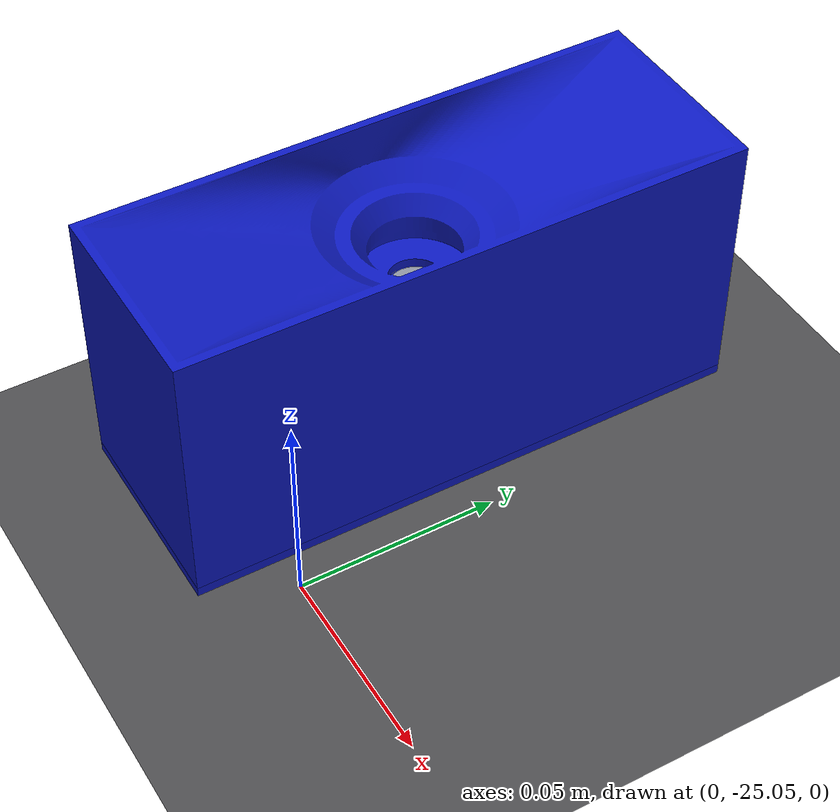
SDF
<sdf version="1.9">
 <world name="default">
  <model name="ground_plane">
   <static>true</static>
   <link name="link">
    <collision name="collision">
     <geometry><plane><normal>0 0 1</normal><size>1 1</size></plane></geometry>
    </collision>
    <visual name="visual">
     <cast_shadows>false</cast_shadows>
     <geometry><plane><normal>0 0 1</normal><size>500 500</size></plane></geometry>
     <material>
      <ambient>0.30 0.30 0.31 1</ambient>
      <diffuse>0.30 0.30 0.31 1</diffuse>
      <specular>0 0 0 0</specular>
      <pbr>
       <metal>
        <albedo_map>materials/textures/asphalt_grey.png</albedo_map>
        <metalness>0.0</metalness>
        <roughness>1.0</roughness>
       </metal>
      </pbr>
     </material>
    </visual>
    <inertial>
     <mass>1</mass>
     <inertia><ixx>1</ixx><ixy>0</ixy><ixz>0</ixz><iyy>1</iyy><iyz>0</iyz><izz>1</izz></inertia>
    </inertial>
   </link>
  </model>
  <model name="payload_blue">
   <pose>-0.035000 -25.000000 0.035 0 0 1.5707963268</pose>
   <link name="link">
    <inertial>
     <mass>0.15</mass>
     <inertia><ixx>9.25e-5</ixx><iyy>3.06e-4</iyy><izz>2.76e-4</izz><ixy>0</ixy><ixz>0</ixz><iyz>0</iyz></inertia>
    </inertial>
    <collision name="bore_base">
     <pose>0.000000 0.000000 -0.009000 0.000000000 0.000000000 0.000000000</pose>
     <geometry><box><size>0.140000 0.050000 0.052000</size></box></geometry>
    </collision>
    <collision name="bore_fill_wall_00">
     <pose>-0.047100 0.012500 0.029750 0.000000000 0.000000000 0.000000000</pose>
     <geometry><box><size>0.045800 0.025000 0.010500</size></box></geometry>
    </collision>
    <collision name="bore_fill_wall_01">
     <pose>-0.047100 -0.012500 0.029750 0.000000000 0.000000000 0.000000000</pose>
     <geometry><box><size>0.045800 0.025000 0.010500</size></box></geometry>
    </collision>
    <collision name="bore_fill_wall_02">
     <pose>-0.021175 0.020503 0.029750 0.000000000 0.000000000 0.000000000</pose>
     <geometry><box><size>0.006050 0.008993 0.010500</size></box></geometry>
    </collision>
    <collision name="bore_fill_wall_03">
     <pose>-0.021175 -0.020503 0.029750 0.000000000 0.000000000 0.000000000</pose>
     <geometry><box><size>0.006050 0.008993 0.010500</size></box></geometry>
    </collision>
    <collision name="bore_fill_wall_04">
     <pose>-0.015125 0.022979 0.029750 0.000000000 0.000000000 0.000000000</pose>
     <geometry><box><size>0.006050 0.004042 0.010500</size></box></geometry>
    </collision>
    <collision name="bore_fill_wall_05">
     <pose>-0.015125 -0.022979 0.029750 0.000000000 0.000000000 0.000000000</pose>
     <geometry><box><size>0.006050 0.004042 0.010500</size></box></geometry>
    </collision>
    <collision name="bore_fill_wall_06">
     <pose>-0.009075 0.024216 0.029750 0.000000000 0.000000000 0.000000000</pose>
     <geometry><box><size>0.006050 0.001568 0.010500</size></box></geometry>
    </collision>
    <collision name="bore_fill_wall_07">
     <pose>-0.009075 -0.024216 0.029750 0.000000000 0.000000000 0.000000000</pose>
     <geometry><box><size>0.006050 0.001568 0.010500</size></box></geometry>
    </collision>
    <collision name="bore_fill_wall_08">
     <pose>-0.003025 0.024600 0.029750 0.000000000 0.000000000 0.000000000</pose>
     <geometry><box><size>0.006050 0.000800 0.010500</size></box></geometry>
    </collision>
    <collision name="bore_fill_wall_09">
     <pose>-0.003025 -0.024600 0.029750 0.000000000 0.000000000 0.000000000</pose>
     <geometry><box><size>0.006050 0.000800 0.010500</size></box></geometry>
    </collision>
    <collision name="bore_fill_wall_10">
     <pose>0.003025 0.024600 0.029750 0.000000000 0.000000000 0.000000000</pose>
     <geometry><box><size>0.006050 0.000800 0.010500</size></box></geometry>
    </collision>
    <collision name="bore_fill_wall_11">
     <pose>0.003025 -0.024600 0.029750 0.000000000 0.000000000 0.000000000</pose>
     <geometry><box><size>0.006050 0.000800 0.010500</size></box></geometry>
    </collision>
    <collision name="bore_fill_wall_12">
     <pose>0.009075 0.024216 0.029750 0.000000000 0.000000000 0.000000000</pose>
     <geometry><box><size>0.006050 0.001568 0.010500</size></box></geometry>
    </collision>
    <collision name="bore_fill_wall_13">
     <pose>0.009075 -0.024216 0.029750 0.000000000 0.000000000 0.000000000</pose>
     <geometry><box><size>0.006050 0.001568 0.010500</size></box></geometry>
    </collision>
    <collision name="bore_fill_wall_14">
     <pose>0.015125 0.022979 0.029750 0.000000000 0.000000000 0.000000000</pose>
     <geometry><box><size>0.006050 0.004042 0.010500</size></box></geometry>
    </collision>
    <collision name="bore_fill_wall_15">
     <pose>0.015125 -0.022979 0.029750 0.000000000 0.000000000 0.000000000</pose>
     <geometry><box><size>0.006050 0.004042 0.010500</size></box></geometry>
    </collision>
    <collision name="bore_fill_wall_16">
     <pose>0.021175 0.020503 0.029750 0.000000000 0.000000000 0.000000000</pose>
     <geometry><box><size>0.006050 0.008993 0.010500</size></box></geometry>
    </collision>
    <collision name="bore_fill_wall_17">
     <pose>0.021175 -0.020503 0.029750 0.000000000 0.000000000 0.000000000</pose>
     <geometry><box><size>0.006050 0.008993 0.010500</size></box></geometry>
    </collision>
    <collision name="bore_fill_wall_18">
     <pose>0.047100 0.012500 0.029750 0.000000000 0.000000000 0.000000000</pose>
     <geometry><box><size>0.045800 0.025000 0.010500</size></box></geometry>
    </collision>
    <collision name="bore_fill_wall_19">
     <pose>0.047100 -0.012500 0.029750 0.000000000 0.000000000 0.000000000</pose>
     <geometry><box><size>0.045800 0.025000 0.010500</size></box></geometry>
    </collision>
    <collision name="bore_wall_00">
     <pose>0.026424 0.000000 0.029750 0.000000000 0.000000000 0.000000000</pose>
     <geometry><box><size>0.007153 0.014080 0.010500</size></box></geometry>
    </collision>
    <collision name="bore_wall_01">
     <pose>0.022883 0.013212 0.029750 0.000000000 0.000000000 0.523598776</pose>
     <geometry><box><size>0.007153 0.014080 0.010500</size></box></geometry>
    </collision>
    <collision name="bore_wall_02">
     <pose>0.011895 0.020602 0.029750 0.000000000 0.000000000 1.047197551</pose>
     <geometry><box><size>0.001884 0.014080 0.010500</size></box></geometry>
    </collision>
    <collision name="bore_wall_03">
     <pose>0.000000 0.023871 0.029750 0.000000000 0.000000000 1.570796327</pose>
     <geometry><box><size>0.002048 0.014080 0.010500</size></box></geometry>
    </collision>
    <collision name="bore_wall_04">
     <pose>-0.011895 0.020602 0.029750 0.000000000 0.000000000 2.094395102</pose>
     <geometry><box><size>0.001884 0.014080 0.010500</size></box></geometry>
    </collision>
    <collision name="bore_wall_05">
     <pose>-0.022883 0.013212 0.029750 0.000000000 0.000000000 2.617993878</pose>
     <geometry><box><size>0.007153 0.014080 0.010500</size></box></geometry>
    </collision>
    <collision name="bore_wall_06">
     <pose>-0.026424 0.000000 0.029750 0.000000000 0.000000000 3.141592654</pose>
     <geometry><box><size>0.007153 0.014080 0.010500</size></box></geometry>
    </collision>
    <collision name="bore_wall_07">
     <pose>-0.022883 -0.013212 0.029750 0.000000000 0.000000000 3.665191429</pose>
     <geometry><box><size>0.007153 0.014080 0.010500</size></box></geometry>
    </collision>
    <collision name="bore_wall_08">
     <pose>-0.011895 -0.020602 0.029750 0.000000000 0.000000000 4.188790205</pose>
     <geometry><box><size>0.001884 0.014080 0.010500</size></box></geometry>
    </collision>
    <collision name="bore_wall_09">
     <pose>-0.000000 -0.023871 0.029750 0.000000000 0.000000000 4.712388980</pose>
     <geometry><box><size>0.002048 0.014080 0.010500</size></box></geometry>
    </collision>
    <collision name="bore_wall_10">
     <pose>0.011895 -0.020602 0.029750 0.000000000 0.000000000 5.235987756</pose>
     <geometry><box><size>0.001884 0.014080 0.010500</size></box></geometry>
    </collision>
    <collision name="bore_wall_11">
     <pose>0.022883 -0.013212 0.029750 0.000000000 0.000000000 5.759586532</pose>
     <geometry><box><size>0.007153 0.014080 0.010500</size></box></geometry>
    </collision>
    <collision name="bore_fill_chamfer1_00">
     <pose>-0.046735 0.012500 0.022625 0.000000000 0.000000000 0.000000000</pose>
     <geometry><box><size>0.046530 0.025000 0.003750</size></box></geometry>
    </collision>
    <collision name="bore_fill_chamfer1_01">
     <pose>-0.046735 -0.012500 0.022625 0.000000000 0.000000000 0.000000000</pose>
     <geometry><box><size>0.046530 0.025000 0.003750</size></box></geometry>
    </collision>
    <collision name="bore_fill_chamfer1_02">
     <pose>-0.020536 0.020262 0.022625 0.000000000 0.000000000 0.000000000</pose>
     <geometry><box><size>0.005867 0.009476 0.003750</size></box></geometry>
    </collision>
    <collision name="bore_fill_chamfer1_03">
     <pose>-0.020536 -0.020262 0.022625 0.000000000 0.000000000 0.000000000</pose>
     <geometry><box><size>0.005867 0.009476 0.003750</size></box></geometry>
    </collision>
    <collision name="bore_fill_chamfer1_04">
     <pose>-0.014669 0.022663 0.022625 0.000000000 0.000000000 0.000000000</pose>
     <geometry><box><size>0.005867 0.004674 0.003750</size></box></geometry>
    </collision>
    <collision name="bore_fill_chamfer1_05">
     <pose>-0.014669 -0.022663 0.022625 0.000000000 0.000000000 0.000000000</pose>
     <geometry><box><size>0.005867 0.004674 0.003750</size></box></geometry>
    </collision>
    <collision name="bore_fill_chamfer1_06">
     <pose>-0.008801 0.023862 0.022625 0.000000000 0.000000000 0.000000000</pose>
     <geometry><box><size>0.005867 0.002275 0.003750</size></box></geometry>
    </collision>
    <collision name="bore_fill_chamfer1_07">
     <pose>-0.008801 -0.023862 0.022625 0.000000000 0.000000000 0.000000000</pose>
     <geometry><box><size>0.005867 0.002275 0.003750</size></box></geometry>
    </collision>
    <collision name="bore_fill_chamfer1_08">
     <pose>-0.002934 0.024235 0.022625 0.000000000 0.000000000 0.000000000</pose>
     <geometry><box><size>0.005867 0.001530 0.003750</size></box></geometry>
    </collision>
    <collision name="bore_fill_chamfer1_09">
     <pose>-0.002934 -0.024235 0.022625 0.000000000 0.000000000 0.000000000</pose>
     <geometry><box><size>0.005867 0.001530 0.003750</size></box></geometry>
    </collision>
    <collision name="bore_fill_chamfer1_10">
     <pose>0.002934 0.024235 0.022625 0.000000000 0.000000000 0.000000000</pose>
     <geometry><box><size>0.005867 0.001530 0.003750</size></box></geometry>
    </collision>
    <collision name="bore_fill_chamfer1_11">
     <pose>0.002934 -0.024235 0.022625 0.000000000 0.000000000 0.000000000</pose>
     <geometry><box><size>0.005867 0.001530 0.003750</size></box></geometry>
    </collision>
    <collision name="bore_fill_chamfer1_12">
     <pose>0.008801 0.023862 0.022625 0.000000000 0.000000000 0.000000000</pose>
     <geometry><box><size>0.005867 0.002275 0.003750</size></box></geometry>
    </collision>
    <collision name="bore_fill_chamfer1_13">
     <pose>0.008801 -0.023862 0.022625 0.000000000 0.000000000 0.000000000</pose>
     <geometry><box><size>0.005867 0.002275 0.003750</size></box></geometry>
    </collision>
    <collision name="bore_fill_chamfer1_14">
     <pose>0.014669 0.022663 0.022625 0.000000000 0.000000000 0.000000000</pose>
     <geometry><box><size>0.005867 0.004674 0.003750</size></box></geometry>
    </collision>
    <collision name="bore_fill_chamfer1_15">
     <pose>0.014669 -0.022663 0.022625 0.000000000 0.000000000 0.000000000</pose>
     <geometry><box><size>0.005867 0.004674 0.003750</size></box></geometry>
    </collision>
    <collision name="bore_fill_chamfer1_16">
     <pose>0.020536 0.020262 0.022625 0.000000000 0.000000000 0.000000000</pose>
     <geometry><box><size>0.005867 0.009476 0.003750</size></box></geometry>
    </collision>
    <collision name="bore_fill_chamfer1_17">
     <pose>0.020536 -0.020262 0.022625 0.000000000 0.000000000 0.000000000</pose>
     <geometry><box><size>0.005867 0.009476 0.003750</size></box></geometry>
    </collision>
    <collision name="bore_fill_chamfer1_18">
     <pose>0.046735 0.012500 0.022625 0.000000000 0.000000000 0.000000000</pose>
     <geometry><box><size>0.046530 0.025000 0.003750</size></box></geometry>
    </collision>
    <collision name="bore_fill_chamfer1_19">
     <pose>0.046735 -0.012500 0.022625 0.000000000 0.000000000 0.000000000</pose>
     <geometry><box><size>0.046530 0.025000 0.003750</size></box></geometry>
    </collision>
    <collision name="bore_chamfer1_00">
     <pose>0.019945 0.000000 0.020896 0.000000000 -0.411260474 0.000000000</pose>
     <geometry><box><size>0.010560 0.014080 0.004286</size></box></geometry>
    </collision>
    <collision name="bore_chamfer1_01">
     <pose>0.017273 0.009973 0.020896 0.000000000 -0.411260474 0.523598776</pose>
     <geometry><box><size>0.010560 0.014080 0.004286</size></box></geometry>
    </collision>
    <collision name="bore_chamfer1_02">
     <pose>0.009734 0.016861 0.021486 0.000000000 -0.411260474 1.047197551</pose>
     <geometry><box><size>0.010158 0.014080 0.002825</size></box></geometry>
    </collision>
    <collision name="bore_chamfer1_03">
     <pose>0.000000 0.019549 0.021387 0.000000000 -0.411260474 1.570796327</pose>
     <geometry><box><size>0.010226 0.014080 0.003071</size></box></geometry>
    </collision>
    <collision name="bore_chamfer1_04">
     <pose>-0.009734 0.016861 0.021486 0.000000000 -0.411260474 2.094395102</pose>
     <geometry><box><size>0.010158 0.014080 0.002825</size></box></geometry>
    </collision>
    <collision name="bore_chamfer1_05">
     <pose>-0.017273 0.009973 0.020896 0.000000000 -0.411260474 2.617993878</pose>
     <geometry><box><size>0.010560 0.014080 0.004286</size></box></geometry>
    </collision>
    <collision name="bore_chamfer1_06">
     <pose>-0.019945 0.000000 0.020896 0.000000000 -0.411260474 3.141592654</pose>
     <geometry><box><size>0.010560 0.014080 0.004286</size></box></geometry>
    </collision>
    <collision name="bore_chamfer1_07">
     <pose>-0.017273 -0.009973 0.020896 0.000000000 -0.411260474 3.665191429</pose>
     <geometry><box><size>0.010560 0.014080 0.004286</size></box></geometry>
    </collision>
    <collision name="bore_chamfer1_08">
     <pose>-0.009734 -0.016861 0.021486 0.000000000 -0.411260474 4.188790205</pose>
     <geometry><box><size>0.010158 0.014080 0.002825</size></box></geometry>
    </collision>
    <collision name="bore_chamfer1_09">
     <pose>-0.000000 -0.019549 0.021387 0.000000000 -0.411260474 4.712388980</pose>
     <geometry><box><size>0.010226 0.014080 0.003071</size></box></geometry>
    </collision>
    <collision name="bore_chamfer1_10">
     <pose>0.009734 -0.016861 0.021486 0.000000000 -0.411260474 5.235987756</pose>
     <geometry><box><size>0.010158 0.014080 0.002825</size></box></geometry>
    </collision>
    <collision name="bore_chamfer1_11">
     <pose>0.017273 -0.009973 0.020896 0.000000000 -0.411260474 5.759586532</pose>
     <geometry><box><size>0.010560 0.014080 0.004286</size></box></geometry>
    </collision>
    <collision name="bore_fill_chamfer2_00">
     <pose>-0.042360 0.012500 0.018875 0.000000000 0.000000000 0.000000000</pose>
     <geometry><box><size>0.055280 0.025000 0.003750</size></box></geometry>
    </collision>
    <collision name="bore_fill_chamfer2_01">
     <pose>-0.042360 -0.012500 0.018875 0.000000000 0.000000000 0.000000000</pose>
     <geometry><box><size>0.055280 0.025000 0.003750</size></box></geometry>
    </collision>
    <collision name="bore_fill_chamfer2_02">
     <pose>0.000000 0.019860 0.018875 0.000000000 0.000000000 0.000000000</pose>
     <geometry><box><size>0.029440 0.010280 0.003750</size></box></geometry>
    </collision>
    <collision name="bore_fill_chamfer2_03">
     <pose>0.000000 -0.019860 0.018875 0.000000000 0.000000000 0.000000000</pose>
     <geometry><box><size>0.029440 0.010280 0.003750</size></box></geometry>
    </collision>
    <collision name="bore_fill_chamfer2_04">
     <pose>0.042360 0.012500 0.018875 0.000000000 0.000000000 0.000000000</pose>
     <geometry><box><size>0.055280 0.025000 0.003750</size></box></geometry>
    </collision>
    <collision name="bore_fill_chamfer2_05">
     <pose>0.042360 -0.012500 0.018875 0.000000000 0.000000000 0.000000000</pose>
     <geometry><box><size>0.055280 0.025000 0.003750</size></box></geometry>
    </collision>
    <collision name="bore_chamfer2_00">
     <pose>0.013812 0.000000 0.017698 0.000000000 -0.828582980 0.000000000</pose>
     <geometry><box><size>0.005088 0.008781 0.003482</size></box></geometry>
    </collision>
    <collision name="bore_chamfer2_01">
     <pose>0.011962 0.006906 0.017698 0.000000000 -0.828582980 0.523598776</pose>
     <geometry><box><size>0.005088 0.008781 0.003482</size></box></geometry>
    </collision>
    <collision name="bore_chamfer2_02">
     <pose>0.006906 0.011962 0.017698 0.000000000 -0.828582980 1.047197551</pose>
     <geometry><box><size>0.005088 0.008781 0.003482</size></box></geometry>
    </collision>
    <collision name="bore_chamfer2_03">
     <pose>0.000000 0.013812 0.017698 0.000000000 -0.828582980 1.570796327</pose>
     <geometry><box><size>0.005088 0.008781 0.003482</size></box></geometry>
    </collision>
    <collision name="bore_chamfer2_04">
     <pose>-0.006906 0.011962 0.017698 0.000000000 -0.828582980 2.094395102</pose>
     <geometry><box><size>0.005088 0.008781 0.003482</size></box></geometry>
    </collision>
    <collision name="bore_chamfer2_05">
     <pose>-0.011962 0.006906 0.017698 0.000000000 -0.828582980 2.617993878</pose>
     <geometry><box><size>0.005088 0.008781 0.003482</size></box></geometry>
    </collision>
    <collision name="bore_chamfer2_06">
     <pose>-0.013812 0.000000 0.017698 0.000000000 -0.828582980 3.141592654</pose>
     <geometry><box><size>0.005088 0.008781 0.003482</size></box></geometry>
    </collision>
    <collision name="bore_chamfer2_07">
     <pose>-0.011962 -0.006906 0.017698 0.000000000 -0.828582980 3.665191429</pose>
     <geometry><box><size>0.005088 0.008781 0.003482</size></box></geometry>
    </collision>
    <collision name="bore_chamfer2_08">
     <pose>-0.006906 -0.011962 0.017698 0.000000000 -0.828582980 4.188790205</pose>
     <geometry><box><size>0.005088 0.008781 0.003482</size></box></geometry>
    </collision>
    <collision name="bore_chamfer2_09">
     <pose>-0.000000 -0.013812 0.017698 0.000000000 -0.828582980 4.712388980</pose>
     <geometry><box><size>0.005088 0.008781 0.003482</size></box></geometry>
    </collision>
    <collision name="bore_chamfer2_10">
     <pose>0.006906 -0.011962 0.017698 0.000000000 -0.828582980 5.235987756</pose>
     <geometry><box><size>0.005088 0.008781 0.003482</size></box></geometry>
    </collision>
    <collision name="bore_chamfer2_11">
     <pose>0.011962 -0.006906 0.017698 0.000000000 -0.828582980 5.759586532</pose>
     <geometry><box><size>0.005088 0.008781 0.003482</size></box></geometry>
    </collision>
    <visual name="visual">
     <pose>0 0 0.008 0 0 0</pose>
     <geometry><mesh><uri>model://kursad_payload/meshes/payload_body.stl</uri></mesh></geometry>
     <material>
      <ambient>0.05 0.10 0.75 1</ambient>
      <diffuse>0.05 0.10 0.75 1</diffuse>
      <specular>0.2 0.2 0.2 1</specular>
     </material>
    </visual>
    <visual name="bottom_plate_visual">
     <pose>0 0 0.008 0 0 0</pose>
     <geometry><mesh><uri>model://kursad_payload/meshes/payload_bottom_plate.stl</uri></mesh></geometry>
     <material>
      <ambient>0.05 0.10 0.75 1</ambient>
      <diffuse>0.05 0.10 0.75 1</diffuse>
      <specular>0.2 0.2 0.2 1</specular>
     </material>
    </visual>
    <visual name="target_disk_visual">
     <pose>0 0 0.0053 0 0 0</pose>
     <geometry><cylinder><radius>0.0175</radius><length>0.001</length></cylinder></geometry>
     <material>
      <ambient>0.32 0.33 0.36 1</ambient>
      <diffuse>0.55 0.57 0.62 1</diffuse>
      <specular>0.9 0.9 0.9 1</specular>
     </material>
    </visual>
   </link>
  </model>
 </world>
</sdf>
